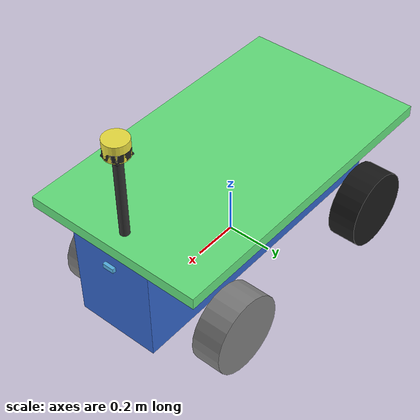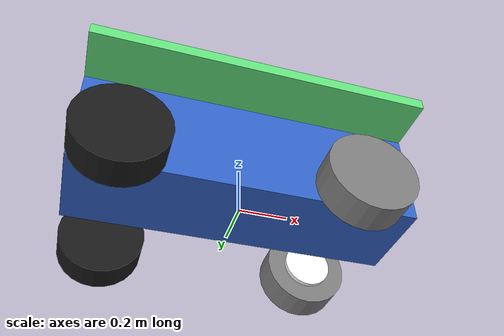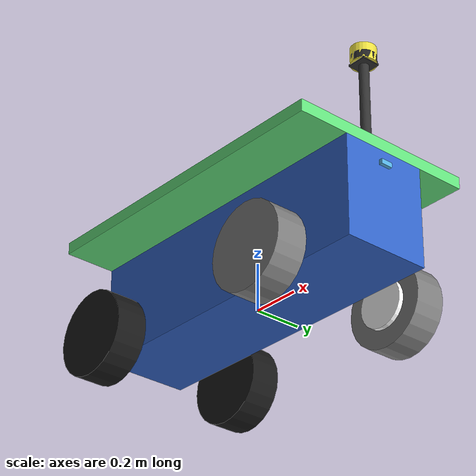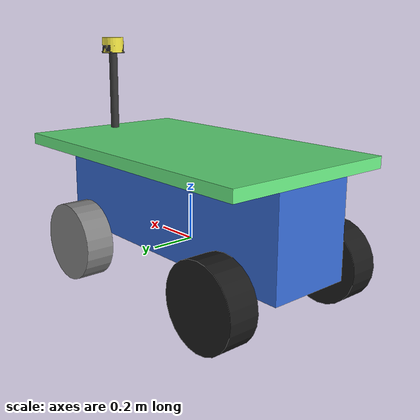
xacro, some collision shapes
<?xml version="1.0"?>
<robot name="alpha" xmlns:xacro="http://ros.org/wiki/xacro">

  <!-- EMCON - bot_name scopes all gz-transport sensor topics per robot instance -->
  <xacro:arg name="bot_name" default="alpha" />

  <xacro:include filename="bot_ros2_control.xacro"/>

  <!-- Base Footprint (reference frame) -->
  <link name="base_footprint"/>

  <!-- Main Base Link -->
  <link name="base_link">
    <inertial>
      <origin xyz="0 0 -0.1" rpy="0 0 0"/>
      <mass value="5"/>
      <inertia ixx="0.144" ixy="0" ixz="0" iyy="0.857" iyz="0" izz="0.840"/>
    </inertial>

    <collision name="base_collision">
      <origin xyz="0 0 0" rpy="0 0 0"/>
      <geometry>
        <box size="1.37 0.37 0.415"/>
      </geometry>
      <surface>
        <contact>
          <collide_without_contact>false</collide_without_contact>
          <ode>
            <min_depth>0.005</min_depth>
            <kp>1e6</kp>
            <kd>100.0</kd>
            <max_vel>0.01</max_vel>
          </ode>
        </contact>
        <friction>
          <ode>
            <mu>0.5</mu>
            <mu2>0.4</mu2>
          </ode>
        </friction>
      </surface>
    </collision>

    <visual name="base_visual">
      <origin xyz="0 0 0" rpy="0 0 0"/>
      <geometry>
        <box  size="1.37 0.37 0.415"/>
      </geometry>
      <material name="blue">
        <color rgba="0.2 0.4 0.8 1"/>
      </material>
    </visual>

  </link>

  <!-- Fixed joint between base_footprint and base_link -->
  <joint name="base_footprint_joint" type="fixed">
    <parent link="base_footprint"/>
    <child link="base_link"/>
    <origin xyz="0 0 0.175" rpy="0 0 0"/>
  </joint>

 <link name="base_front_left_steering">
    <inertial>
      <origin xyz="0 0 0" rpy="0 0 0"/>
      <mass value="0.25"/>
      <inertia ixx="0.000633" ixy="0" ixz="0" iyy="0.000633" iyz="0" izz="0.00125"/>
    </inertial>

    <visual name="base_front_left_steering_visual">
      <origin xyz="0 0 0" rpy="0 0 0"/>
      <geometry>
        <cylinder radius="0.1" length="0.02"/>
      </geometry>
      <material name="white">
        <color rgba="1 1 1 1"/>
      </material>
    </visual>

    <collision name="base_front_left_steering_collision">
      <origin xyz="0 0 0" rpy="0 0 0"/>
      <geometry>
        <cylinder radius="0.1" length="0.02"/>
      </geometry>
    </collision>
  </link>

  <joint name="base_front_left_steering_joint" type="revolute">
    <parent link="base_link"/>
    <child link="base_front_left_steering"/>
    <origin xyz="0.39 -0.265 -0.2075" rpy="-1.57079632679 0 0"/>
    <limit lower="-0.2616" upper="0.2616" effort="100" velocity="1.0"/>
    <axis xyz="0 1 0"/>
  </joint>

  <link name="base_front_right_steering">
    <inertial>
      <origin xyz="0 0 0" rpy="0 0 0"/>
      <mass value="0.25"/>
      <inertia ixx="0.000633" ixy="0" ixz="0" iyy="0.000633" iyz="0" izz="0.00125"/>
    </inertial>

    <visual name="base_front_right_steering_visual">
      <origin xyz="0 0 0" rpy="0 0 0"/>
      <geometry>
        <cylinder radius="0.1" length="0.02"/>
      </geometry>
      <material name="white">
        <color rgba="1 1 1 1"/>
      </material>
    </visual>

    <collision name="base_front_right_steering_collision">
      <origin xyz="0 0 0" rpy="0 0 0"/>
      <geometry>
        <cylinder radius="0.1" length="0.02"/>
      </geometry>
    </collision>
  </link>

  <joint name="base_front_right_steering_joint" type="revolute">
    <parent link="base_link"/>
    <child link="base_front_right_steering"/>
    <origin xyz="0.39 0.265 -0.2075" rpy="-1.57079632679 0 0"/>
    <limit lower="-0.2616" upper="0.2616" effort="100" velocity="1.0"/>
    <axis xyz="0 1 0"/>
  </joint>

  <!-- ========== FRONT LEFTWHEEL ========== -->

  <link name="base_front_left_wheel">
    <inertial>
      <origin xyz="0 0 0" rpy="0 0 0"/>
      <mass value="2"/>
      <inertia ixx="0.0181" ixy="0" ixz="0" iyy="0.0306" iyz="0" izz="0.0306"/>
    </inertial>

    <visual name="base_front_left_wheel_visual">
      <origin xyz="0 0 0" rpy="0 0 0"/>
      <geometry>
        <cylinder radius="0.175" length="0.13"/>
      </geometry>
      <material name="grey">
        <color rgba="0.5 0.5 0.5 1"/>
      </material>
    </visual>

    <collision name="base_front_left_wheel_collision">
      <origin xyz="0 0 0" rpy="0 0 0"/>
      <geometry>
        <cylinder radius="0.175" length="0.13"/>
      </geometry>
      <surface>
        <!-- Stiff wheel on stiff ground. Sand effect via friction/slip only -->
        <contact>
          <collide_without_contact>false</collide_without_contact>
          <ode>
            <min_depth>0</min_depth>
            <kp>1e6</kp>
            <kd>200.0</kd>
            <max_vel>0.01</max_vel>
          </ode>
        </contact>
        <friction>
          <ode>
            <mu>0.4</mu>
            <mu2>0.3</mu2>
            <fdir1>1 0 0</fdir1>
          </ode>
        </friction>
      </surface>
    </collision>
  </link>

  <joint name="base_front_left_wheel_joint" type="continuous">
    <parent link="base_front_left_steering"/>
    <child link="base_front_left_wheel"/>
    <origin xyz="0 0 -0.075" rpy="0 0 0"/>
    <axis xyz="0 0 1"/>
  </joint>

    <!-- ========== FRONT RIGHTWHEEL ========== -->

  <link name="base_front_right_wheel">
    <inertial>
      <origin xyz="0 0 0" rpy=" 0 0 0"/>
      <mass value="2"/>
      <inertia ixx="0.0181" ixy="0" ixz="0" iyy="0.0306" iyz="0" izz="0.0306"/>
    </inertial>

    <visual name="base_front_right_wheel_visual">
      <origin xyz="0 0 0" rpy="0 0 0"/>
      <geometry>
        <cylinder radius="0.175" length="0.13"/>
      </geometry>
      <material name="grey">
        <color rgba="0.5 0.5 0.5 1"/>
      </material>
    </visual>

    <collision name="base_front_right_wheel_collision">
      <origin xyz="0 0 0" rpy="0 0 0"/>
      <geometry>
        <cylinder radius="0.175" length="0.13"/>
      </geometry>
      <surface>
        <!-- Stiff wheel on stiff ground. Sand effect via friction/slip only -->
        <contact>
          <collide_without_contact>false</collide_without_contact>
          <ode>
            <min_depth>0</min_depth>
            <kp>1e6</kp>
            <kd>200.0</kd>
            <max_vel>0.01</max_vel>
          </ode>
        </contact>
        <friction>
          <ode>
            <mu>0.4</mu>
            <mu2>0.3</mu2>
            <fdir1>1 0 0</fdir1>
          </ode>
        </friction>
      </surface>
    </collision>
  </link>

  <joint name="base_front_right_wheel_joint" type="continuous">
    <parent link="base_front_right_steering"/>
    <child link="base_front_right_wheel"/>
    <origin xyz="0 0 0.075" rpy="0 0 0"/>
    <axis xyz="0 0 1"/>
  </joint>

  <!-- ========== BACK LEFTWHEEL ========== -->

  <link name="base_back_left_wheel">
    <inertial>
      <origin xyz="0 0 0" rpy="0 0 0"/>
      <mass value="2"/>
      <inertia ixx="0.0181" ixy="0" ixz="0" iyy="0.0306" iyz="0" izz="0.0306"/>
    </inertial>

    <visual name="base_back_left_wheel_visual">
      <origin xyz="0 0 0" rpy="0 0 0"/>
      <geometry>
        <cylinder radius="0.175" length="0.13"/>
      </geometry>
      <material name="black">
        <color rgba="0.1 0.1 0.1 1"/>
      </material>
    </visual>

    <collision name="base_back_left_wheel_collision">
      <origin xyz="0 0 0" rpy="0 0 0"/>
      <geometry>
        <cylinder radius="0.175" length="0.13"/>
      </geometry>
      <surface>
        <!-- Stiff wheel on stiff ground. Sand effect via friction/slip only -->
        <contact>
          <collide_without_contact>false</collide_without_contact>
          <ode>
            <min_depth>0</min_depth>
            <kp>1e6</kp>
            <kd>200.0</kd>
            <max_vel>0.01</max_vel>
          </ode>
        </contact>
        <friction>
          <ode>
            <mu>2.0</mu>
            <mu2>1.5</mu2>
            <fdir1>1 0 0</fdir1>
          </ode>
        </friction>
      </surface>
    </collision>
  </link>

  <joint name="base_back_left_wheel_joint" type="continuous">
    <parent link="base_link"/>
    <child link="base_back_left_wheel"/>
    <origin xyz="-0.51 -0.335 -0.2075" rpy="-1.57079632679 0 0"/>
    <axis xyz="0 0 1"/>
    <limit effort="2000" velocity="100.0"/>
  </joint>

    <!-- ========== BACK RIGHTWHEEL ========== -->

  <link name="base_back_right_wheel">
    <inertial>
      <origin xyz="0 0 0" rpy="0 0 0"/>
      <mass value="2"/>
      <inertia ixx="0.0181" ixy="0" ixz="0" iyy="0.0306" iyz="0" izz="0.0306"/>
    </inertial>

    <visual name="base_back_right_wheel_visual">
      <origin xyz="0 0 0" rpy="0 0 0"/>
      <geometry>
        <cylinder radius="0.175" length="0.13"/>
      </geometry>
      <material name="black">
        <color rgba="0.1 0.1 0.1 1"/>
      </material>
    </visual>

    <collision name="base_back_right_wheel_collision">
      <origin xyz="0 0 0" rpy="0 0 0"/>
      <geometry>
        <cylinder radius="0.175" length="0.13"/>
      </geometry>
      <surface>
        <!-- Stiff wheel on stiff ground. Sand effect via friction/slip only -->
        <contact>
          <collide_without_contact>false</collide_without_contact>
          <ode>
            <min_depth>0</min_depth>
            <kp>1e6</kp>
            <kd>200.0</kd>
            <max_vel>0.01</max_vel>
          </ode>
        </contact>
        <friction>
          <ode>
            <mu>2.0</mu>
            <mu2>1.5</mu2>
            <fdir1>1 0 0</fdir1>
          </ode>
        </friction>
      </surface>
    </collision>
  </link>

  <joint name="base_back_right_wheel_joint" type="continuous">
    <parent link="base_link"/>
    <child link="base_back_right_wheel"/>
    <origin xyz="-0.51 0.335 -0.2075" rpy="-1.57079632679 0 0"/>
    <axis xyz="0 0 1"/>
    <limit effort="2000" velocity="100.0"/>
  </joint>

  <link name="bot_storage_base">
    <inertial>
      <origin xyz="0 0 0" rpy="0 0 0"/>
      <mass value="2"/>
      <inertia ixx="0.3132" ixy="0" ixz="0" iyy="0.1071" iyz="0" izz="0.4195"/>
    </inertial>

    <collision name="bot_storage_base_collision">
      <origin xyz="0 0 0" rpy="0 0 0"/>
      <geometry>
        <box size="0.8 1.37 0.05"/>
      </geometry>
    </collision>

    <visual name="bot_storage_base_visual">
      <origin xyz="0 0 0" rpy="0 0 0"/>
      <geometry>
        <box  size="0.8 1.37 0.05"/>
      </geometry>
      <material name="rgb">
        <color rgba="0.4 0.9 0.5 1"/>
      </material>
    </visual>
  </link>

  <joint name="bot_storage_base_joint" type="fixed">
    <parent link="base_link"/>
    <child link="bot_storage_base"/>
    <origin xyz="0 0 0.2325" rpy="0 0 1.57079632679"/>
  </joint>
   <link name="rgb_camera">
    <inertial>
    <origin xyz="-0.03 0 0" rpy="0 0 0"/>
        <mass value="0.1" />
        <inertia ixx="0.000023" ixy="0.0" ixz="0"
            iyy="0.000011" iyz="0" izz="0.000030" />
    </inertial>
    <visual>
      <origin xyz="0 0 0" rpy="0 0 1.57079632679" />
      <geometry>
         <mesh filename="file://$(find bot_description)/meshes/3dCamera.DAE" scale="1 1 1"/>
      </geometry>
    </visual>

    <collision>
      <origin xyz="0 0 0" rpy="0 0 0"/>
      <geometry>
          <box size="0.03 0.05 0.02" />
      </geometry>
    </collision>
  </link>

  <joint name="camera_joint" type="fixed">
    <origin xyz="0.685 0 0.15" rpy="0 0 0"/>
    <parent link="base_link"/>
    <child link="rgb_camera"/>
    <axis xyz="0.0 0 0"/>
  </joint>

  <joint type="fixed" name="camera_optical_joint">
    <origin xyz="0 0 0.151" rpy="0 0 0"/>
    <parent link="rgb_camera"/>
    <child link="camera_link_optical"/>
  </joint>

   <link name="camera_link_optical">
  </link>

  <link name="laser_link">

    <visual>
      <geometry>
        <mesh filename="file://$(find bot_description)/meshes/lidar_3d_v1.dae" scale="1 1 1"/>
      </geometry>
    </visual>

    <collision>

      <geometry>
        <cylinder radius="0.0516" length="0.0717" />
      </geometry>
    </collision>
  </link>

  <!-- LiDAR mounting mast visual-only support column from chassis top (z=0.2075) to lidar_base bottom (z=0.634). -->
  <!-- Mast length = 0.426 m, radius = 20 mm (40 mm dia section steel tube), two 80x80x8 mm flanges. -->
  <link name="lidar_mast">
    <visual name="lidar_mast_pole">
      <origin xyz="0 0 0.213" rpy="0 0 0"/>
      <geometry>
        <cylinder radius="0.020" length="0.426"/>
      </geometry>
      <material name="dark_grey">
        <color rgba="0.20 0.20 0.20 1"/>
      </material>
    </visual>
    <visual name="lidar_mast_flange_bottom">
      <origin xyz="0 0 0.004" rpy="0 0 0"/>
      <geometry>
        <box size="0.080 0.080 0.008"/>
      </geometry>
      <material name="dark_grey">
        <color rgba="0.20 0.20 0.20 1"/>
      </material>
    </visual>
    <visual name="lidar_mast_flange_top">
      <origin xyz="0 0 0.422" rpy="0 0 0"/>
      <geometry>
        <box size="0.080 0.080 0.008"/>
      </geometry>
      <material name="dark_grey">
        <color rgba="0.20 0.20 0.20 1"/>
      </material>
    </visual>
  </link>

  <joint name="lidar_mast_joint" type="fixed">
    <parent link="base_link"/>
    <child link="lidar_mast"/>
    <!-- Mast base flush with chassis top surface (z = half chassis height = 0.2075 m from base_link origin) -->
    <origin xyz="0.60 0 0.2075" rpy="0 0 0"/>
  </joint>

  <link name="lidar_base">

    <visual>
    <origin xyz="0 0 0.011" rpy="0 0 0"/>
        <material name="black">
        <color rgba="0.15 0.15 0.15 1"/>
      </material>
      <geometry>
        <cylinder radius="0.0516" length="0.032" />
      </geometry>
    </visual>

    <collision>
      <origin xyz="0 0 0.011" rpy="0 0 0"/>
      <geometry>
        <cylinder radius="0.0516" length="0.032" />
      </geometry>
    </collision>
  </link>

    <joint name="lidar_base_joint" type="fixed">
    <origin xyz="0 0 0.431" rpy="0 0 0"/>
    <parent link="lidar_mast"/>
    <child link="lidar_base"/>
    <axis xyz="0.0 0.0 1.0"/>
  </joint>

  <joint name="laser_joint" type="fixed">
    <origin xyz="0 0 0.027" rpy="0 0.0 0.0"/>
    <parent link="lidar_base"/>
    <child link="laser_link"/>
    <axis xyz="0.0 0.0 1.0"/>
  </joint>

  <gazebo reference="laser_link">
    <sensor name="lidar" type="gpu_lidar">
      <always_on>true</always_on>
      <visualize>true</visualize>
      <topic>$(arg bot_name)/scan</topic>
      <update_rate>10</update_rate>
      <gz_frame_id>laser_link</gz_frame_id>
      <lidar>
        <scan>
          <horizontal>
            <samples>900</samples>
            <resolution>1.00000</resolution>
            <min_angle>0.000000</min_angle>
            <max_angle>6.283185</max_angle>
          </horizontal>
          <vertical>
            <samples>16</samples>
            <resolution>1.0</resolution>
            <min_angle>-0.959931</min_angle>
            <max_angle>0.261799</max_angle>
          </vertical>
        </scan>
        <range>
          <min>0.20</min>
          <max>40.0</max>
          <resolution>0.01</resolution>
        </range>
        <noise>
          <type>gaussian</type>
          <mean>0.0</mean>
          <stddev>0.01</stddev>
        </noise>
      </lidar>
    </sensor>
  </gazebo>

  <joint name="navsat_joint" type="fixed">
    <origin xyz="0 0 0" rpy="0 0 0" />
    <parent link="base_link"/>
    <child link="navsat_link" />
  </joint>

  <link name="navsat_link">
  </link>

  <joint name="imu_joint" type="fixed">
    <origin xyz="0 0 0" rpy="0 0 0" />
    <parent link="lidar_base"/>
    <child link="imu_link" />
  </joint>

  <link name="imu_link">
  </link>

  <gazebo reference="imu_link">
    <sensor name="imu" type="imu">
      <always_on>true</always_on>
      <update_rate>400</update_rate>
      <visualize>true</visualize>
      <topic>$(arg bot_name)/imu</topic>
      <enable_metrics>true</enable_metrics>
      <gz_frame_id>imu_link</gz_frame_id>

      <!-- Enhanced IMU parameters for accurate sensing -->
      <imu>
        <angular_velocity>
          <x>
            <noise type="gaussian">
              <mean>0.0</mean>
              <stddev>2e-4</stddev>
            </noise>
          </x>
          <y>
            <noise type="gaussian">
              <mean>0.0</mean>
              <stddev>2e-4</stddev>
            </noise>
          </y>
          <z>
            <noise type="gaussian">
              <mean>0.0</mean>
              <stddev>2e-4</stddev>
            </noise>
          </z>
        </angular_velocity>
        <linear_acceleration>
          <x>
            <noise type="gaussian">
              <mean>0.0</mean>
              <stddev>1.7e-2</stddev>
            </noise>
          </x>
          <y>
            <noise type="gaussian">
              <mean>0.0</mean>
              <stddev>1.7e-2</stddev>
            </noise>
          </y>
          <z>
            <noise type="gaussian">
              <mean>0.0</mean>
              <stddev>1.7e-2</stddev>
            </noise>
          </z>
        </linear_acceleration>
      </imu>
    </sensor>
  </gazebo>

  <gazebo reference="navsat_link">
    <sensor name="navsat" type="navsat">
      <always_on>1</always_on>
      <update_rate>1</update_rate>
      <topic>$(arg bot_name)/navsat</topic>
      <gz_frame_id>navsat_link</gz_frame_id>
    </sensor>
  </gazebo>

  <!-- Front wheels  Bekker-Wong base slip from rolling-resistance equivalent -->
  <gazebo reference="base_front_left_wheel">
    <mu1>0.8</mu1>
    <mu2>0.5</mu2>
    <kp>1e6</kp>
    <kd>200.0</kd>
    <slip1>0.12</slip1>
    <slip2>0.15</slip2>
    <minDepth>0.005</minDepth>
    <maxVel>0.01</maxVel>
    <fdir1>1 0 0</fdir1>
  </gazebo>

  <gazebo reference="base_front_right_wheel">
    <mu1>0.8</mu1>
    <mu2>0.5</mu2>
    <kp>1e6</kp>
    <kd>200.0</kd>
    <slip1>0.12</slip1>
    <slip2>0.15</slip2>
    <minDepth>0.005</minDepth>
    <maxVel>0.01</maxVel>
    <fdir1>1 0 0</fdir1>
  </gazebo>

  <!-- Rear drive wheels  higher base slip, lighter static load (36 N each) -->
  <gazebo reference="base_back_left_wheel">
    <mu1>2.0</mu1>
    <mu2>1.5</mu2>
    <kp>1e6</kp>
    <kd>200.0</kd>
    <slip1>0.0</slip1>
    <slip2>0.0</slip2>
    <minDepth>0.005</minDepth>
    <maxVel>0.01</maxVel>
    <fdir1>1 0 0</fdir1>
  </gazebo>

  <gazebo reference="base_back_right_wheel">
    <mu1>2.0</mu1>
    <mu2>1.5</mu2>
    <kp>1e6</kp>
    <kd>200.0</kd>
    <slip1>0.0</slip1>
    <slip2>0.0</slip2>
    <minDepth>0.005</minDepth>
    <maxVel>0.01</maxVel>
    <fdir1>1 0 0</fdir1>
  </gazebo>

  <!-- Chassis soft contact -->
  <gazebo reference="base_link">
    <kp>1e6</kp>
    <kd>100.0</kd>
    <mu1>0.5</mu1>
    <mu2>0.4</mu2>
    <minDepth>0.005</minDepth>
    <maxVel>0.01</maxVel>
  </gazebo>

  <gazebo>
    <!-- controller_manager runs natively on the robot's ROS_DOMAIN_ID.
         The EmconSystemInterface plugin handles gz-transport communication.
         No Gazebo ros2_control plugin is needed. -->

    <!-- Native Gazebo Sim motors to respond to EMCON Data Diode commands -->
    <plugin filename="gz-sim-joint-position-controller-system" name="gz::sim::systems::JointPositionController">
      <joint_name>base_front_left_steering_joint</joint_name>
      <topic>/model/$(arg bot_name)/joint/base_front_left_steering_joint/cmd_pos</topic>
      <p_gain>50.0</p_gain>
      <i_gain>0.1</i_gain>
      <d_gain>1.0</d_gain>
    </plugin>

    <plugin filename="gz-sim-joint-position-controller-system" name="gz::sim::systems::JointPositionController">
      <joint_name>base_front_right_steering_joint</joint_name>
      <topic>/model/$(arg bot_name)/joint/base_front_right_steering_joint/cmd_pos</topic>
      <p_gain>50.0</p_gain>
      <i_gain>0.1</i_gain>
      <d_gain>1.0</d_gain>
    </plugin>

    <plugin filename="gz-sim-joint-controller-system" name="gz::sim::systems::JointController">
      <joint_name>base_back_left_wheel_joint</joint_name>
      <topic>/model/$(arg bot_name)/joint/base_back_left_wheel_joint/cmd_vel</topic>
      <p_gain>20.0</p_gain>
      <i_gain>0.5</i_gain>
      <d_gain>0.0</d_gain>
      <max_effort>2000.0</max_effort>
      <max_velocity>3.0</max_velocity>
      <min_velocity>-3.0</min_velocity>
      <cmd_max>2000.0</cmd_max>
      <cmd_min>-2000.0</cmd_min>
    </plugin>

    <plugin filename="gz-sim-joint-controller-system" name="gz::sim::systems::JointController">
      <joint_name>base_back_right_wheel_joint</joint_name>
      <topic>/model/$(arg bot_name)/joint/base_back_right_wheel_joint/cmd_vel</topic>
      <p_gain>20.0</p_gain>
      <i_gain>0.5</i_gain>
      <d_gain>0.0</d_gain>
      <max_effort>2000.0</max_effort>
      <max_velocity>3.0</max_velocity>
      <min_velocity>-3.0</min_velocity>
      <cmd_max>2000.0</cmd_max>
      <cmd_min>-2000.0</cmd_min>
    </plugin>

    <plugin filename="gz-sim-joint-state-publisher-system" name="gz::sim::systems::JointStatePublisher">
      <joint_name>base_back_left_wheel_joint</joint_name>
      <joint_name>base_back_right_wheel_joint</joint_name>
      <joint_name>base_front_left_steering_joint</joint_name>
      <joint_name>base_front_right_steering_joint</joint_name>
      <joint_name>base_front_left_wheel_joint</joint_name>
      <joint_name>base_front_right_wheel_joint</joint_name>
    </plugin>

    <plugin filename="gz-sim-pose-publisher-system" name="gz::sim::systems::PosePublisher">
      <publish_link_pose>false</publish_link_pose>
      <publish_collision_pose>false</publish_collision_pose>
      <publish_visual_pose>false</publish_visual_pose>
      <publish_sensor_pose>false</publish_sensor_pose>
      <publish_model_pose>true</publish_model_pose>
      <publish_nested_model_pose>false</publish_nested_model_pose>
      <update_frequency>50</update_frequency>
    </plugin>

    <!-- Sensors, Imu, NavSat system plugins are in the world SDF — do NOT duplicate here -->

    <plugin filename="gz-sim-wheel-slip-system" name="gz::sim::systems::WheelSlip">
      <wheel link_name="base_front_left_wheel">
        <slip_compliance_lateral>0.005</slip_compliance_lateral>
        <slip_compliance_longitudinal>0.005</slip_compliance_longitudinal>
        <wheel_normal_force>43</wheel_normal_force>
        <wheel_radius>0.175</wheel_radius>
      </wheel>
      <wheel link_name="base_front_right_wheel">
        <slip_compliance_lateral>0.005</slip_compliance_lateral>
        <slip_compliance_longitudinal>0.005</slip_compliance_longitudinal>
        <wheel_normal_force>43</wheel_normal_force>
        <wheel_radius>0.175</wheel_radius>
      </wheel>
      <wheel link_name="base_back_left_wheel">
        <slip_compliance_lateral>0.005</slip_compliance_lateral>
        <slip_compliance_longitudinal>0.005</slip_compliance_longitudinal>
        <wheel_normal_force>36</wheel_normal_force>
        <wheel_radius>0.175</wheel_radius>
      </wheel>
      <wheel link_name="base_back_right_wheel">
        <slip_compliance_lateral>0.005</slip_compliance_lateral>
        <slip_compliance_longitudinal>0.005</slip_compliance_longitudinal>
        <wheel_normal_force>36</wheel_normal_force>
        <wheel_radius>0.175</wheel_radius>
      </wheel>
    </plugin>

    <!-- LookupWheelSlip not available in Gazebo Sim 8 (Harmonic), needs gz-sim 10+.
         The slip_map.png is ready at models/terrain/materials/textures/slip_map.png -->

  </gazebo>

</robot>
